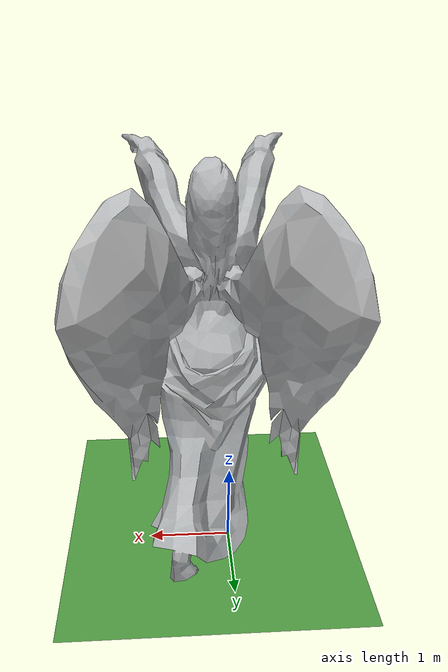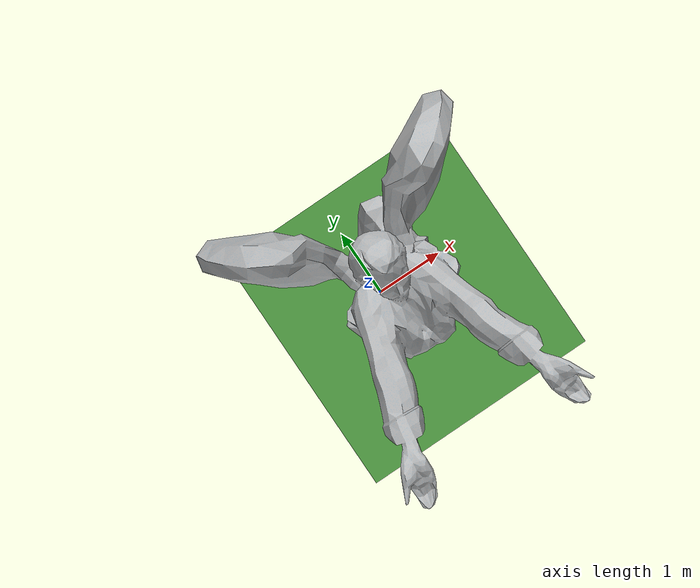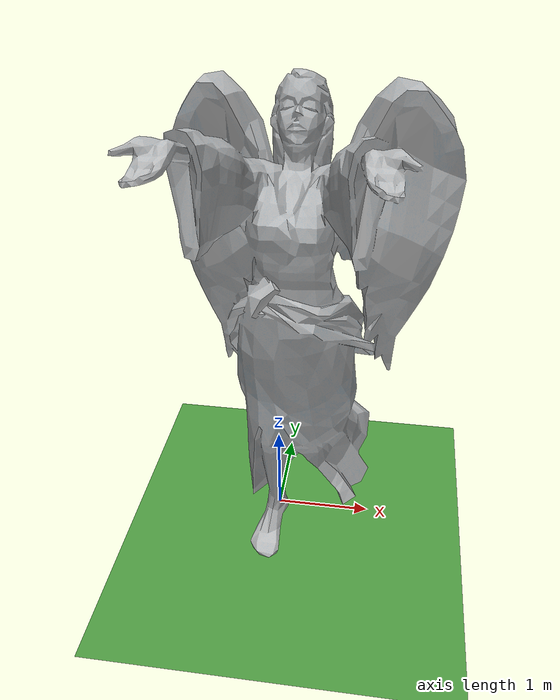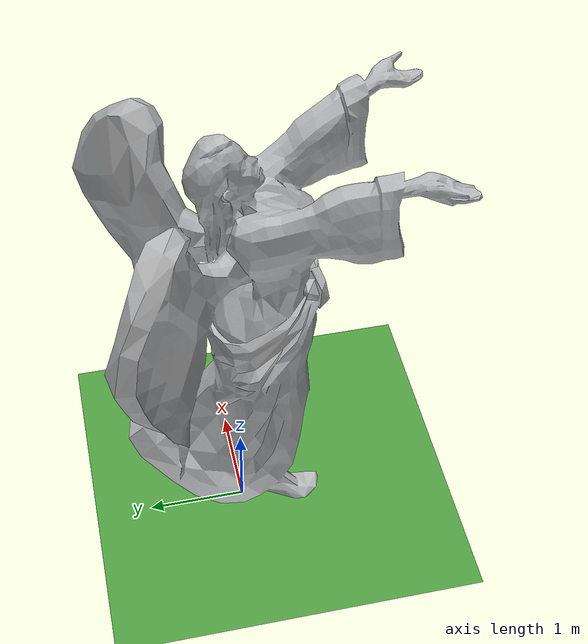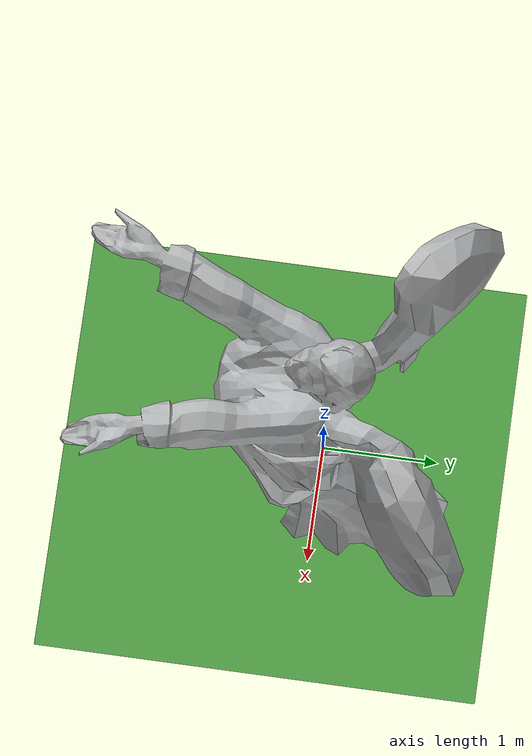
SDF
<sdf version="1.7">
 <world name="default">
  <model name="grass_plane">
   <static>1</static>
   <link name="link">
    <collision name="collision">
     <geometry><plane><normal>0 0 1</normal><size>100 100</size></plane></geometry>
     <surface>
      <contact><collide_bitmask>65535</collide_bitmask></contact>
      <friction><ode><mu>100</mu><mu2>50</mu2></ode></friction>
     </surface>
    </collision>
    <visual name="visual">
     <cast_shadows>0</cast_shadows>
     <geometry><plane><normal>0 0 1</normal><size>100 100</size></plane></geometry>
     <material>
      <script><uri>file://media/materials/scripts/gazebo.material</uri><name>Gazebo/Grass</name></script>
     </material>
    </visual>
   </link>
  </model>
  <scene><ambient>0.7 0.7 0.7 1</ambient><background>0.9 0.9 0.9 1</background><shadows>0</shadows></scene>
  <light name="point_light_1" type="point">
   <pose>3 3 1 0 -0 0</pose>
   <diffuse>0.7 0.7 0.7 1</diffuse>
   <specular>0.5 0.5 0.5 1</specular>
   <direction>-1 -1 -1</direction>
   <attenuation>
    <range>30</range>
    <linear>0.01</linear>
    <constant>0.4</constant>
    <quadratic>0</quadratic>
   </attenuation>
   <cast_shadows>0</cast_shadows>
   <spot><inner_angle>0</inner_angle><outer_angle>0</outer_angle><falloff>0</falloff></spot>
  </light>
  <light name="point_light_2" type="point">
   <pose>3 -3 1 0 -0 0</pose>
   <diffuse>0.7 0.7 0.7 1</diffuse>
   <specular>0.5 0.5 0.5 1</specular>
   <direction>-1 -1 -1</direction>
   <attenuation>
    <range>30</range>
    <linear>0.01</linear>
    <constant>0.4</constant>
    <quadratic>0</quadratic>
   </attenuation>
   <cast_shadows>0</cast_shadows>
   <spot><inner_angle>0</inner_angle><outer_angle>0</outer_angle><falloff>0</falloff></spot>
  </light>
  <light name="point_light_3" type="point">
   <pose>-3 -3 1 0 -0 0</pose>
   <diffuse>0.7 0.7 0.7 1</diffuse>
   <specular>0.5 0.5 0.5 1</specular>
   <direction>-1 -1 -1</direction>
   <attenuation>
    <range>30</range>
    <linear>0.01</linear>
    <constant>0.4</constant>
    <quadratic>0</quadratic>
   </attenuation>
   <cast_shadows>0</cast_shadows>
   <spot><inner_angle>0</inner_angle><outer_angle>0</outer_angle><falloff>0</falloff></spot>
  </light>
  <light name="point_light_4" type="point">
   <pose>-3 3 1 0 -0 0</pose>
   <diffuse>0.7 0.7 0.7 1</diffuse>
   <specular>0.5 0.5 0.5 1</specular>
   <direction>-1 -1 -1</direction>
   <attenuation>
    <range>30</range>
    <linear>0.01</linear>
    <constant>0.4</constant>
    <quadratic>0</quadratic>
   </attenuation>
   <cast_shadows>0</cast_shadows>
   <spot><inner_angle>0</inner_angle><outer_angle>0</outer_angle><falloff>0</falloff></spot>
  </light>
  <plugin name="ros_interface_plugin" filename="librotors_gazebo_ros_interface_plugin.so"/>
  <spherical_coordinates>
   <surface_model>EARTH_WGS84</surface_model>
   <latitude_deg>47.3667</latitude_deg>
   <longitude_deg>8.55</longitude_deg>
   <elevation>500</elevation>
   <heading_deg>0</heading_deg>
  </spherical_coordinates>
  <physics type="ode">
   <ode>
    <solver>
     <type>quick</type>
     <iters>1000</iters>
     <sor>1.3</sor>
     <use_dynamic_moi_rescaling>0</use_dynamic_moi_rescaling>
    </solver>
    <constraints>
     <cfm>0</cfm>
     <erp>0.2</erp>
     <contact_max_correcting_vel>100</contact_max_correcting_vel>
     <contact_surface_layer>0.001</contact_surface_layer>
    </constraints>
   </ode>
   <max_step_size>0.01</max_step_size>
   <real_time_factor>1</real_time_factor>
   <real_time_update_rate>100</real_time_update_rate>
  </physics>
  <model name="floor_arena">
   <static>1</static>
   <link name="link">
    <collision name="collision"><geometry><box><size>1.5 2 0.01</size></box></geometry></collision>
    <visual name="visual">
     <cast_shadows>0</cast_shadows>
     <geometry><mesh><uri>model://statue_angel/meshes/model.dae</uri></mesh></geometry>
     <material><script><uri>model://statue_angel/meshes/model</uri><name>__default__</name></script></material>
    </visual>
   </link>
   <pose>0 0 -0.125803 0 -0 0</pose>
  </model>
  <gravity>0 0 -9.8</gravity>
  <magnetic_field>6e-06 2.3e-05 -4.2e-05</magnetic_field>
  <atmosphere type="adiabatic"/>
 </world>
</sdf>
